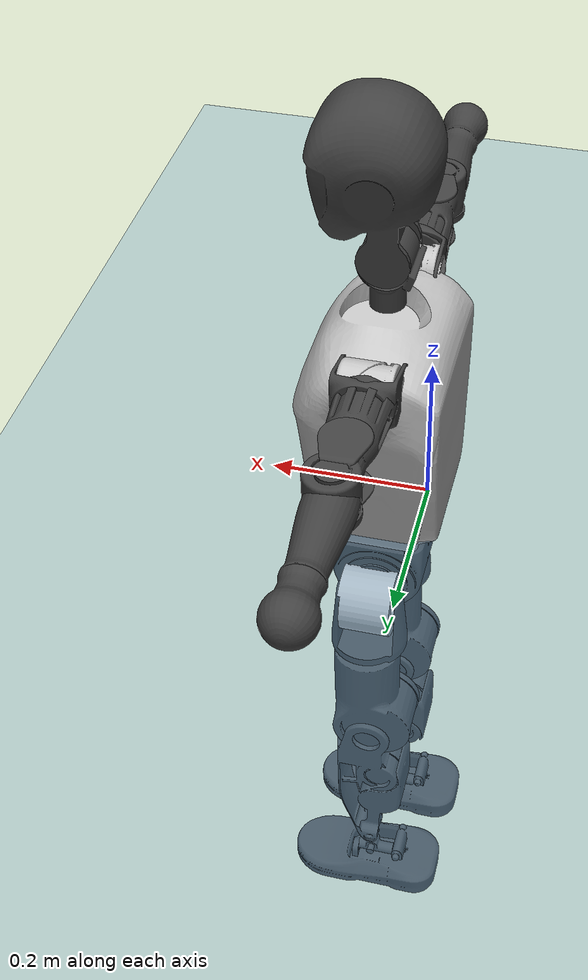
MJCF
<mujoco model="T1">
  <compiler angle="radian" assetdir="assets" balanceinertia="true" inertiafromgeom="false"/>

  <option timestep="0.005" density="1.2" viscosity="2e-05"/>

  <size nkey="1"/>

  <visual>
    <quality shadowsize="8192"/>
    <map shadowclip="0.5"/>
  </visual>

  <default>
    <default class="/">
      <joint armature="0.01" damping="0.01" frictionloss="0.1"/>
      <geom contype="0" conaffinity="0" group="1" solref="-1000 -80"/>
      <site size="0.01 0.005 0.005" group="5"/>
      <general forcelimited="true" biastype="affine" gainprm="25" biasprm="0 -25 -0.6"/>
      <default class="t1">
        <geom rgba="0.25 0.25 0.25 1"/>
        <default class="visual">
          <geom type="mesh" group="2"/>
        </default>
        <default class="collision">
          <geom group="3"/>
        </default>
        <default class="foot">
          <geom size="0.1115 0.05 0.015" type="box" condim="6" group="4" priority="1" solimp="0.015 1 0.015"/>
        </default>
        <default class="reward_collision_sphere">
          <geom group="5" rgba="1 0 0 1"/>
        </default>
      </default>
    </default>
  </default>

  <asset>
    <texture type="skybox" colorspace="auto" name="//unnamed_texture_0" builtin="gradient" rgb1="0.95 0.95 0.95" rgb2="0.95 0.95 0.95" width="100" height="600"/>
    <texture type="2d" colorspace="auto" name="texplane" builtin="checker" rgb1="0.345 0.575 0.748" rgb2="0.345 0.575 0.748" markrgb="1 1 1" width="512" height="512"/>
    <material name="MatPlane" class="/" texture="texplane" texuniform="true" texrepeat="2 2" specular="0.9"/>
    <mesh name="Trunk" class="/" file="Trunk.stl"/>
    <mesh name="H1" class="/" file="H1.stl"/>
    <mesh name="H2" class="/" file="H2.stl"/>
    <mesh name="AL1" class="/" file="AL1.stl"/>
    <mesh name="AL2" class="/" file="AL2.stl"/>
    <mesh name="AL3" class="/" file="AL3.stl"/>
    <mesh name="left_hand_link" class="/" file="left_hand_link.stl"/>
    <mesh name="AR1" class="/" file="AR1.stl"/>
    <mesh name="AR2" class="/" file="AR2.stl"/>
    <mesh name="AR3" class="/" file="AR3.stl"/>
    <mesh name="right_hand_link" class="/" file="right_hand_link.stl"/>
    <mesh name="Waist" class="/" file="Waist.stl"/>
    <mesh name="Hip_Pitch_Left" class="/" file="Hip_Pitch_Left.stl"/>
    <mesh name="Hip_Roll_Left" class="/" file="Hip_Roll_Left.stl"/>
    <mesh name="Hip_Yaw_Left" class="/" file="Hip_Yaw_Left.stl"/>
    <mesh name="Shank_Left" class="/" file="Shank_Left.stl"/>
    <mesh name="Ankle_Cross_Left" class="/" file="Ankle_Cross_Left.stl"/>
    <mesh name="left_foot_link" class="/" file="left_foot_link.stl"/>
    <mesh name="Hip_Pitch_Right" class="/" file="Hip_Pitch_Right.stl"/>
    <mesh name="Hip_Roll_Right" class="/" file="Hip_Roll_Right.stl"/>
    <mesh name="Hip_Yaw_Right" class="/" file="Hip_Yaw_Right.stl"/>
    <mesh name="Shank_Right" class="/" file="Shank_Right.stl"/>
    <mesh name="Ankle_Cross_Right" class="/" file="Ankle_Cross_Right.stl"/>
    <mesh name="right_foot_link" class="/" file="right_foot_link.stl"/>
  </asset>

  <worldbody>
    <geom name="floor" class="/" size="100 100 0.125" type="plane" group="0" material="MatPlane"/>
    <light name="toplight_shadow" class="/" pos="0 0 5" dir="0.0990148 0.0990148 -0.990148" type="directional" ambient="0.04 0.04 0.04" diffuse="0.55 0.55 0.55" specular="0.12 0.12 0.12"/>
    <light name="toplight_fill" class="/" pos="0 0 5" dir="0.0990148 0.0990148 -0.990148" type="directional" castshadow="false" ambient="0.04 0.04 0.04" diffuse="0.3 0.3 0.3" specular="0.08 0.08 0.08"/>
    <body name="trunk" childclass="t1" pos="0.000229932 0.000149777 0.00260809" quat="1 -8.79588e-05 -0.000204431 -1.42117e-05">
      <inertial pos="0.0493778 -0.00367071 0.119466" quat="0.999806 0.00165513 -0.0149251 0.0127129" mass="8.0794" diaginertia="0.0510989 0.00823438 0.106526"/>
      <joint name="//unnamed_joint_0" type="free" armature="0" damping="0" frictionloss="0"/>
      <geom name="//unnamed_geom_1" class="visual" rgba="0.76 0.76 0.76 1" mesh="Trunk"/>
      <geom name="//unnamed_geom_2" class="collision" size="0.0670652 0.0894203 0.13413" pos="0.0533584 0 0.137462" type="box"/>
      <geom name="//unnamed_geom_3" class="reward_collision_sphere" size="0.102833" pos="0.0533584 0 0.114552"/>
      <geom name="//unnamed_geom_4" class="reward_collision_sphere" size="0.013413" pos="0.0533584 0.0550617 0"/>
      <geom name="//unnamed_geom_5" class="reward_collision_sphere" size="0.013413" pos="0.0533584 -0.0550617 0"/>
      <geom name="//unnamed_geom_6" class="reward_collision_sphere" size="0.013413" pos="0.0533584 0.069313 0.206193"/>
      <geom name="//unnamed_geom_7" class="reward_collision_sphere" size="0.013413" pos="0.0533584 -0.069313 0.206193"/>
      <site name="imu" pos="-0.000677872 0.0102511 -0.011323" size="0.00894203"/>
      <camera name="track" pos="0 -1.29557 0" quat="0.707107 0.707107 0 0" mode="trackcom"/>
      <camera name="ego_camera" pos="0.108495 0 0.481118" quat="-0.5 -0.5 0.5 0.5"/>
      <body name="H1" pos="0.0546164 -0.00333903 0.276582" quat="0.999999 -0.000375304 0.000852853 0.000531014">
        <inertial pos="-0.000715731 -0.00107279 0.0680098" quat="0.759289 -0.0122037 0.00608562 0.650611" mass="0.305615" diaginertia="0.000127781 2.59214e-05 0.000286221"/>
        <joint name="AAHead_yaw" pos="0 0 0" axis="0.00616282 0.00777309 0.999951" stiffness="0.00160125" range="-1.52412 1.5921" armature="0.00933768" damping="0" frictionloss="0.0766901"/>
        <geom name="//unnamed_geom_8" class="visual" mesh="H1"/>
        <body name="H2" pos="-0.000259132 -0.00123876 0.0705983" quat="1 -0.000129354 0.00020177 -4.74473e-05">
          <inertial pos="0.00383003 0.00307894 0.115541" quat="0.988205 0.115573 -0.0639887 -0.0774511" mass="0.45141" diaginertia="0.001129 0.000214765 0.00343513"/>
          <joint name="Head_pitch" pos="0 0 0" axis="0.0114756 -0.999916 0.00594726" range="-1.21042 0.346054" armature="0.00851109" damping="0.0094029" frictionloss="0.0867729"/>
          <geom name="//unnamed_geom_9" class="visual" mesh="H2"/>
          <geom name="//unnamed_geom_10" class="collision" size="0.0715363" pos="0.00889307 0 0.126007"/>
          <geom name="//unnamed_geom_11" class="reward_collision_sphere" size="0.0804783" pos="0.0177861 0 0.114552"/>
        </body>
      </body>
      <body name="AL1" pos="0.0499137 0.0676357 0.248425" quat="1 0.000392789 0.000705416 -0.00033804">
        <inertial pos="0.000817094 0.0262107 -7.52836e-06" quat="0.50232 0.493331 -0.5009 0.503386" mass="0.3615" diaginertia="0.00071108 0.000143073 0.000564804"/>
        <joint name="Left_Shoulder_Pitch" pos="0 0 0" axis="0.00436248 0.999885 -0.0144971" range="-3.27932 1.22859" armature="0.00756004" damping="0" frictionloss="0.078078"/>
        <geom name="//unnamed_geom_12" class="visual" rgba="0.76 0.76 0.76 1" mesh="AL1"/>
        <body name="AL2" pos="-0.00102565 0.0291911 0.000334239" quat="1 0.000279867 0.000432046 -0.000669675">
          <inertial pos="0.00428941 0.0273289 -0.000361031" quat="0.490864 0.511152 -0.496534 0.501229" mass="0.112738" diaginertia="0.000218615 3.89429e-05 0.000339975"/>
          <joint name="Left_Shoulder_Roll" pos="0 0 0" axis="-0.999976 -0.00368647 0.00589709" range="-1.5652 1.73023" armature="0.0101752" damping="0.0204122" frictionloss="0.0924526"/>
          <geom name="//unnamed_geom_13" class="visual" mesh="AL2"/>
          <body name="AL3" pos="-0.00222972 0.0368322 5.4404e-05" quat="1 -0.000112426 0.000950017 -0.000196171">
            <inertial pos="0.0013281 0.0554027 0.00222172" quat="0.70802 0.706189 -0.00199206 -0.000964031" mass="0.737613" diaginertia="0.00710063 0.00147993 0.00121965"/>
            <joint name="Left_Elbow_Pitch" pos="0 0 0" axis="-0.00440656 -0.999975 -0.00552285" stiffness="0.0111014" range="-2.25098 2.28903" armature="0.00994691" damping="0.0106783" frictionloss="0.0938166"/>
            <geom name="//unnamed_geom_14" class="visual" mesh="AL3"/>
            <geom name="//unnamed_geom_15" class="collision" size="0.0268261 0.0670652" pos="0 0.0323892 0" quat="0.707105 0.707108 0 0" type="cylinder"/>
            <geom name="//unnamed_geom_16" class="reward_collision_sphere" size="0.0321913"/>
            <body name="left_hand_link" pos="-0.00238713 0.0975135 -0.00135116" quat="1 -0.000301034 -1.91052e-05 0.000467022">
              <inertial pos="0.000183259 0.0736953 -0.000632795" quat="0.70779 0.706411 -0.00228927 -0.00343377" mass="0.227516" diaginertia="0.00464477 0.000963188 0.000415387"/>
              <joint name="Left_Elbow_Yaw" pos="0 0 0" axis="-0.00987015 0.00656791 0.99993" stiffness="0.00917537" range="-2.49423 0.0208186" armature="0.0079565" damping="0.00211592" frictionloss="0.10158"/>
              <geom name="//unnamed_geom_17" class="visual" mesh="left_hand_link"/>
              <geom name="//unnamed_geom_18" class="collision" size="0.0268261 0.0782428" pos="0 0.084212 0" quat="0.707105 0.707108 0 0" type="cylinder"/>
              <geom name="//unnamed_geom_19" class="reward_collision_sphere" size="0.0447102"/>
              <geom name="//unnamed_geom_20" class="reward_collision_sphere" size="0.0312971" pos="0 0.0712563 0"/>
              <geom name="//unnamed_geom_21" class="reward_collision_sphere" size="0.0312971" pos="0 0.139274 0"/>
            </body>
          </body>
        </body>
      </body>
      <body name="AR1" pos="0.0498634 -0.0658654 0.248758" quat="1 0.000127531 0.000460847 9.04566e-05">
        <inertial pos="-0.000328246 -0.0313916 -0.00100754" quat="0.507216 0.490583 -0.503758 0.498284" mass="0.391439" diaginertia="0.000765296 0.000142309 0.000581756"/>
        <joint name="Right_Shoulder_Pitch" pos="0 0 0" axis="-0.00420194 -0.999991 -0.000685643" range="-1.22565 3.34127" armature="0.00883037" damping="0.01919" frictionloss="0.0834297"/>
        <geom name="//unnamed_geom_22" class="visual" rgba="0.76 0.76 0.76 1" mesh="AR1"/>
        <body name="AR2" pos="0.000562902 -0.0320449 0.000674358" quat="1 -6.91853e-05 -9.35062e-05 -6.79031e-06">
          <inertial pos="0.0060882 -0.0241053 -0.000296388" quat="0.505192 0.491539 -0.510498 0.492507" mass="0.11885" diaginertia="0.000226202 3.88028e-05 0.000359786"/>
          <joint name="Right_Shoulder_Roll" pos="0 0 0" axis="-0.999963 0.00258002 0.00823662" range="-1.7367 1.62474" armature="0.0089723" damping="0" frictionloss="0.100125"/>
          <geom name="//unnamed_geom_23" class="visual" mesh="AR2"/>
          <body name="AR3" pos="-0.00225857 -0.0390055 -0.00337285" quat="0.999999 0.00123792 0.000171454 -0.000332843">
            <inertial pos="-0.000879296 -0.0528173 -0.00128919" quat="0.704747 0.709364 0.0105662 -0.004727" mass="0.754148" diaginertia="0.00717866 0.0014554 0.00121983"/>
            <joint name="Right_Elbow_Pitch" pos="0 0 0" axis="0.00140088 0.999993 -0.00351992" stiffness="0.00284275" range="-2.32243 2.22503" armature="0.00927536" damping="0.00453286" frictionloss="0.0870936"/>
            <geom name="//unnamed_geom_24" class="visual" mesh="AR3"/>
            <geom name="//unnamed_geom_25" class="collision" size="0.0268261 0.0670652" pos="0 -0.0323892 0" quat="0.707105 0.707108 0 0" type="cylinder"/>
            <geom name="//unnamed_geom_26" class="reward_collision_sphere" size="0.0321913"/>
            <body name="right_hand_link" pos="-6.68319e-05 -0.0958991 0.000249619" quat="1 1.3056e-05 -6.03199e-06 -6.72973e-06">
              <inertial pos="-0.000481277 -0.0712529 -0.000233452" quat="0.700495 0.713562 0.00381763 0.0110288" mass="0.222982" diaginertia="0.00434567 0.000898247 0.000407281"/>
              <joint name="Right_Elbow_Yaw" pos="0 0 0" axis="-0.0143742 -0.00531461 0.999883" range="0.0411077 2.48013" armature="0.00900814" damping="0.00634743" frictionloss="0.0936524"/>
              <geom name="//unnamed_geom_27" class="visual" mesh="right_hand_link"/>
              <geom name="//unnamed_geom_28" class="collision" size="0.0268261 0.0782428" pos="0 -0.084212 0" quat="0.707105 0.707108 0 0" type="cylinder"/>
              <geom name="//unnamed_geom_29" class="reward_collision_sphere" size="0.0447102"/>
              <geom name="//unnamed_geom_30" class="reward_collision_sphere" size="0.0312971" pos="0 -0.0712563 0"/>
              <geom name="//unnamed_geom_31" class="reward_collision_sphere" size="0.0312971" pos="0 -0.139274 0"/>
            </body>
          </body>
        </body>
      </body>
      <body name="Waist" pos="0.0556854 -0.00153586 -0.131465" quat="0.999999 -0.0013947 0.000315724 0.000694374">
        <inertial pos="0.0010658 -0.00335992 0.0082664" quat="0.983644 0.000387911 -0.180105 0.00269781" mass="1.89534" diaginertia="0.00299379 0.000599971 0.00906611"/>
        <joint name="Waist" pos="0 0 0" axis="0.0154481 -0.000648026 0.99988" stiffness="0.00770341" range="-1.55978 1.57637" armature="0.00965311" damping="0" frictionloss="0.0829807"/>
        <geom name="//unnamed_geom_32" class="visual" mesh="Waist"/>
        <body name="Hip_Pitch_Left" pos="0.00404767 0.067561 0.00210243" quat="0.999999 0.000269669 -0.00132984 9.52554e-05">
          <inertial pos="-0.000163243 -0.00657184 -0.0212912" quat="0.973289 0.229476 0.00478546 0.00516331" mass="0.728024" diaginertia="0.000965569 0.000163017 0.00231338"/>
          <joint name="Left_Hip_Pitch" pos="0 0 0" axis="-0.00218879 0.999945 0.0102846" range="-1.79318 1.60273" armature="0.00830715" damping="0.00659508" frictionloss="0.0991744"/>
          <geom name="//unnamed_geom_33" class="visual" rgba="0.76 0.76 0.76 1" mesh="Hip_Pitch_Left"/>
          <body name="Hip_Roll_Left" pos="0.00168093 0.00206288 -0.0203811" quat="1 -8.20502e-06 -0.000121536 -0.000182478">
            <inertial pos="-0.000678977 -0.00271053 -0.060508" quat="0.70445 -0.00720707 -0.00539605 0.709697" mass="0.272401" diaginertia="0.00094451 0.00017287 0.000996549"/>
            <joint name="Left_Hip_Roll" pos="0 0 0" axis="-0.999997 -0.00090605 0.00205534" stiffness="0.00220146" range="-1.62147 0.235185" armature="0.00970366" damping="0.0126959" frictionloss="0.0939244"/>
            <geom name="//unnamed_geom_34" class="visual" mesh="Hip_Roll_Left"/>
            <geom name="//unnamed_geom_35" class="reward_collision_sphere" size="0.0491812"/>
            <body name="Hip_Yaw_Left" pos="4.12986e-05 0.0021356 -0.0921417" quat="1 0.000693459 -0.000307626 0.00040008">
              <inertial pos="-0.00592377 -0.00074337 -0.105043" quat="0.696699 -0.0337451 -0.0309394 0.715901" mass="1.55218" diaginertia="0.0136709 0.00285469 0.00522262"/>
              <joint name="Left_Hip_Yaw" pos="0 0 0" axis="-0.00660954 -0.00941934 -0.999934" stiffness="0.00168966" range="-0.991505 0.978539" armature="0.00871408" damping="0.00445587" frictionloss="0.101085"/>
              <geom name="//unnamed_geom_36" class="visual" mesh="Hip_Yaw_Left"/>
              <geom name="//unnamed_geom_37" class="collision" size="0.0447102 0.0715363" type="cylinder"/>
              <body name="Shank_Left" pos="-0.00852917 0.000924802 -0.155215" quat="1 0.0001003 0.000310959 -0.00016503">
                <inertial pos="-0.00303198 -0.00205172 -0.1433" quat="0.997531 -5.4234e-05 -0.0246624 0.0657547" mass="1.20778" diaginertia="0.0190817 0.00383589 0.00371449"/>
                <joint name="Left_Knee_Pitch" pos="0 0 0" axis="0.00335749 0.99999 0.00296664" stiffness="0.00947619" range="0.0538455 2.38999" armature="0.00869394" damping="0.014549" frictionloss="0.0859555"/>
                <geom name="//unnamed_geom_38" class="visual" mesh="Shank_Left"/>
                <geom name="//unnamed_geom_39" class="collision" size="0.0447102 0.0670652" pos="0 0 -0.137462" type="cylinder"/>
                <geom name="//unnamed_geom_40" class="reward_collision_sphere" size="0.0581232"/>
                <body name="Ankle_Cross_Left" pos="-0.00116782 0.000633408 -0.319905" quat="0.999999 0.000741833 -0.00114249 -0.000683215">
                  <inertial pos="-0.000504459 0.00133228 -0.0119263" quat="0.442678 0.551022 0.550164 0.44467" mass="0.0521528" diaginertia="1.62658e-05 2.77383e-06 2.18813e-05"/>
                  <joint name="Left_Ankle_Pitch" pos="0 0 0" axis="0.00960375 0.999865 0.013336" stiffness="0.00985375" range="-0.903435 0.384627" armature="0.00862165" damping="0.0223721" frictionloss="0.0771831"/>
                  <geom name="//unnamed_geom_41" class="visual" mesh="Ankle_Cross_Left"/>
                  <body name="left_foot_link" pos="-0.00170516 0.00443023 -0.0159499" quat="1 4.06468e-05 -7.07735e-05 -1.83508e-05">
                    <inertial pos="0.00164671 0.00245517 -0.010068" quat="0.00639949 0.62531 0.0111794 0.78027" mass="0.487662" diaginertia="0.00153328 0.000286174 0.0045281"/>
                    <joint name="Left_Ankle_Roll" pos="0 0 0" axis="-0.999873 -0.0158644 -0.00171155" stiffness="0.00489822" range="-0.47889 0.469231" armature="0.00924896" damping="0.00999447" frictionloss="0.097936"/>
                    <geom name="//unnamed_geom_42" class="visual" mesh="left_foot_link"/>
                    <geom name="left_foot" class="foot" size="0.102751 0.0523182 0.0129952" pos="0.00889307 0 -0.0171828"/>
                    <geom name="//unnamed_geom_44" class="reward_collision_sphere" size="0.0464986" pos="0.00889307 0 -0.0171828"/>
                    <geom name="//unnamed_geom_45" class="reward_collision_sphere" size="0.0268261" pos="0.0844842 -0.014899 -0.0171828"/>
                    <geom name="//unnamed_geom_46" class="reward_collision_sphere" size="0.0268261" pos="-0.0622515 -0.014899 -0.0171828"/>
                    <site name="left_foot" class="foot" pos="0.00889307 0 -0.0171828" size="0.00894203"/>
                  </body>
                </body>
              </body>
            </body>
          </body>
        </body>
        <body name="Hip_Pitch_Right" pos="0.0022935 -0.0673944 -0.00214234" quat="1 -1.56378e-05 8.25847e-06 -9.21981e-06">
          <inertial pos="-0.0015263 0.00488794 -0.0202565" quat="0.973275 -0.228924 0.0153221 0.00975134" mass="0.685769" diaginertia="0.000970095 0.000160519 0.00238579"/>
          <joint name="Right_Hip_Pitch" pos="0 0 0" axis="0.000185129 -0.999939 -0.0109991" range="-1.55864 1.74054" armature="0.00898333" damping="0.00690074" frictionloss="0.0775593"/>
          <geom name="//unnamed_geom_47" class="visual" rgba="0.76 0.76 0.76 1" mesh="Hip_Pitch_Right"/>
          <body name="Hip_Roll_Right" pos="-0.000334394 -0.00246246 -0.0240086" quat="1 2.09324e-05 0.00010704 -9.43549e-05">
            <inertial pos="0.00092673 -0.00169864 -0.06416" quat="0.70789 -0.0127591 -0.0122764 0.7061" mass="0.274189" diaginertia="0.000958572 0.000170614 0.00101067"/>
            <joint name="Right_Hip_Roll" pos="0 0 0" axis="-0.999977 -0.00617521 0.00283605" range="-0.180437 1.56967" armature="0.0089046" damping="0.0142916" frictionloss="0.077931"/>
            <geom name="//unnamed_geom_48" class="visual" mesh="Hip_Roll_Right"/>
            <geom name="//unnamed_geom_49" class="reward_collision_sphere" size="0.0491812"/>
            <body name="Hip_Yaw_Right" pos="0.00291455 0.00219325 -0.0921596" quat="0.999999 0.000558678 0.00107495 -0.000593913">
              <inertial pos="-0.0061058 -0.000868077 -0.099757" quat="0.715447 -0.0406599 -0.037498 0.696475" mass="1.59871" diaginertia="0.0141756 0.00285696 0.00501762"/>
              <joint name="Right_Hip_Yaw" pos="0 0 0" axis="0.0148875 -0.00865722 -0.999852" stiffness="0.00256185" range="-1.06092 1.05187" armature="0.00874848" damping="0.0190612" frictionloss="0.0901771"/>
              <geom name="//unnamed_geom_50" class="visual" mesh="Hip_Yaw_Right"/>
              <geom name="//unnamed_geom_51" class="collision" size="0.0447102 0.0715363" type="cylinder"/>
              <body name="Shank_Right" pos="-0.0130911 0.00252777 -0.154497" quat="1 -0.000517805 -0.000379517 -0.000152832">
                <inertial pos="-0.00568027 -0.000929594 -0.14319" quat="0.999192 -0.0012309 -0.0241379 -0.032116" mass="1.24931" diaginertia="0.0189259 0.00376705 0.00375558"/>
                <joint name="Right_Knee_Pitch" pos="0 0 0" axis="-0.000582653 -0.999997 -0.0023632" range="-2.28693 0.0425326" armature="0.00899802" damping="0.0151171" frictionloss="0.086591"/>
                <geom name="//unnamed_geom_52" class="visual" mesh="Shank_Right"/>
                <geom name="//unnamed_geom_53" class="collision" size="0.0447102 0.0670652" pos="0 0 -0.137462" type="cylinder"/>
                <geom name="//unnamed_geom_54" class="reward_collision_sphere" size="0.0581232"/>
                <body name="Ankle_Cross_Right" pos="-0.00131841 0.00105637 -0.319522" quat="0.999999 0.00107378 0.000282706 0.000472943">
                  <inertial pos="-0.00421281 0.000181983 -0.0106135" quat="0.447839 0.551187 0.550556 0.438772" mass="0.0511493" diaginertia="1.56097e-05 2.9446e-06 2.14898e-05"/>
                  <joint name="Right_Ankle_Pitch" pos="0 0 0" axis="0.00791652 -0.999944 0.00708129" range="-0.293455 0.909416" armature="0.00896521" damping="0" frictionloss="0.0784119"/>
                  <geom name="//unnamed_geom_55" class="visual" mesh="Ankle_Cross_Right"/>
                  <body name="right_foot_link" pos="0.00169479 -0.00173787 -0.0120508" quat="0.999999 -0.000821112 -0.000645941 0.000237511">
                    <inertial pos="-0.000555356 -0.00297654 -0.0100699" quat="0.000880552 0.623076 -0.0133614 0.782047" mass="0.493972" diaginertia="0.00148291 0.000268502 0.00411548"/>
                    <joint name="Right_Ankle_Roll" pos="0 0 0" axis="-0.999998 -0.00190713 -0.00105737" stiffness="0.00905316" range="-0.446745 0.4188" armature="0.0101164" damping="0.0118199" frictionloss="0.0863083"/>
                    <geom name="//unnamed_geom_56" class="visual" mesh="right_foot_link"/>
                    <geom name="right_foot" class="foot" size="0.101404 0.0464769 0.013749" pos="0.00889307 0 -0.0171828"/>
                    <geom name="//unnamed_geom_58" class="reward_collision_sphere" size="0.0357681"/>
                    <geom name="//unnamed_geom_59" class="reward_collision_sphere" size="0.0268261" pos="0.00889307 0 -0.0171828"/>
                    <geom name="//unnamed_geom_60" class="reward_collision_sphere" size="0.0268261" pos="0.0844842 0.014899 -0.0171828"/>
                    <geom name="//unnamed_geom_61" class="reward_collision_sphere" size="0.0268261" pos="-0.0622515 0.014899 -0.0171828"/>
                    <site name="right_foot" class="foot" pos="0.00889307 0 -0.0171828" size="0.00894203"/>
                  </body>
                </body>
              </body>
            </body>
          </body>
        </body>
      </body>
    </body>
  </worldbody>

  <contact>
    <pair class="/" geom1="floor" geom2="left_foot" name="//unnamed_contact_0"/>
    <pair class="/" geom1="floor" geom2="right_foot" name="//unnamed_contact_1"/>
  </contact>

  <actuator>
    <general name="AAHead_yaw" class="/" joint="AAHead_yaw" forcerange="-6.9168 6.9168" gainprm="22.5066" biasprm="0 -22.5066 -0.48606"/>
    <general name="Head_pitch" class="/" joint="Head_pitch" forcerange="-6.89172 6.89172" gainprm="22.5066" biasprm="0 -22.5066 -0.48606"/>
    <general name="Left_Shoulder_Pitch" class="/" joint="Left_Shoulder_Pitch" forcerange="-14.6381 14.6381" gainprm="22.5066" biasprm="0 -22.5066 -0.48606"/>
    <general name="Left_Shoulder_Roll" class="/" joint="Left_Shoulder_Roll" forcerange="-15.592 15.592" gainprm="22.5066" biasprm="0 -22.5066 -0.48606"/>
    <general name="Left_Elbow_Pitch" class="/" joint="Left_Elbow_Pitch" forcerange="-17.1224 17.1224" gainprm="22.5066" biasprm="0 -22.5066 -0.48606"/>
    <general name="Left_Elbow_Yaw" class="/" joint="Left_Elbow_Yaw" forcerange="-14.4454 14.4454" gainprm="22.5066" biasprm="0 -22.5066 -0.48606"/>
    <general name="Right_Shoulder_Pitch" class="/" joint="Right_Shoulder_Pitch" forcerange="-15.454 15.454" gainprm="22.5066" biasprm="0 -22.5066 -0.48606"/>
    <general name="Right_Shoulder_Roll" class="/" joint="Right_Shoulder_Roll" forcerange="-16.4942 16.4942" gainprm="22.5066" biasprm="0 -22.5066 -0.48606"/>
    <general name="Right_Elbow_Pitch" class="/" joint="Right_Elbow_Pitch" forcerange="-17.0188 17.0188" gainprm="22.5066" biasprm="0 -22.5066 -0.48606"/>
    <general name="Right_Elbow_Yaw" class="/" joint="Right_Elbow_Yaw" forcerange="-17.4563 17.4563" gainprm="22.5066" biasprm="0 -22.5066 -0.48606"/>
    <general name="Waist" class="/" joint="Waist" forcerange="-26.6001 26.6001" gainprm="22.5066" biasprm="0 -22.5066 -0.48606"/>
    <general name="Left_Hip_Pitch" class="/" joint="Left_Hip_Pitch" forcerange="-37.3998 37.3998" gainprm="22.5066" biasprm="0 -22.5066 -0.48606"/>
    <general name="Left_Hip_Roll" class="/" joint="Left_Hip_Roll" forcerange="-28.7566 28.7566" gainprm="22.5066" biasprm="0 -22.5066 -0.48606"/>
    <general name="Left_Hip_Yaw" class="/" joint="Left_Hip_Yaw" forcerange="-26.1131 26.1131" gainprm="22.5066" biasprm="0 -22.5066 -0.48606"/>
    <general name="Left_Knee_Pitch" class="/" joint="Left_Knee_Pitch" forcerange="-58.6063 58.6063" gainprm="22.5066" biasprm="0 -22.5066 -0.48606"/>
    <general name="Left_Ankle_Pitch" class="/" joint="Left_Ankle_Pitch" forcerange="-17.8352 17.8352" gainprm="22.5066" biasprm="0 -22.5066 -0.48606"/>
    <general name="Left_Ankle_Roll" class="/" joint="Left_Ankle_Roll" forcerange="-13.9475 13.9475" gainprm="22.5066" biasprm="0 -22.5066 -0.48606"/>
    <general name="Right_Hip_Pitch" class="/" joint="Right_Hip_Pitch" forcerange="-39.8835 39.8835" gainprm="22.5066" biasprm="0 -22.5066 -0.48606"/>
    <general name="Right_Hip_Roll" class="/" joint="Right_Hip_Roll" forcerange="-23.9891 23.9891" gainprm="22.5066" biasprm="0 -22.5066 -0.48606"/>
    <general name="Right_Hip_Yaw" class="/" joint="Right_Hip_Yaw" forcerange="-24.0757 24.0757" gainprm="22.5066" biasprm="0 -22.5066 -0.48606"/>
    <general name="Right_Knee_Pitch" class="/" joint="Right_Knee_Pitch" forcerange="-58.0727 58.0727" gainprm="22.5066" biasprm="0 -22.5066 -0.48606"/>
    <general name="Right_Ankle_Pitch" class="/" joint="Right_Ankle_Pitch" forcerange="-19.8095 19.8095" gainprm="22.5066" biasprm="0 -22.5066 -0.48606"/>
    <general name="Right_Ankle_Roll" class="/" joint="Right_Ankle_Roll" forcerange="-12.6752 12.6752" gainprm="22.5066" biasprm="0 -22.5066 -0.48606"/>
  </actuator>

  <sensor>
    <gyro site="imu" name="imu_angular_velocity"/>
    <velocimeter site="imu" name="imu_linear_velocity"/>
    <framelinvel objtype="site" objname="left_foot" name="left_foot_global_linear_velocity"/>
    <framelinvel objtype="site" objname="right_foot" name="right_foot_global_linear_velocity"/>
  </sensor>

  <keyframe>
    <key name="home" qpos="0 0 0.6385 1 0 0 0 0 0 0 1.4 0 -0.4 0 -1.4 0 0.4 0 -0.4 0 0 0.8 -0.4 0 0.4 0 0 -0.8 0.4 0"/>
  </keyframe>
</mujoco>
